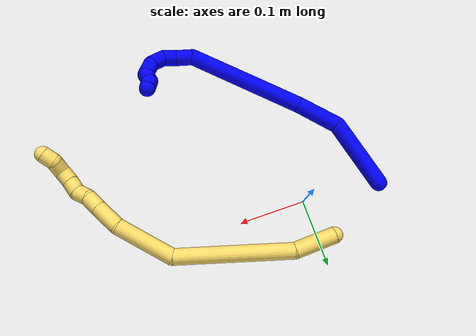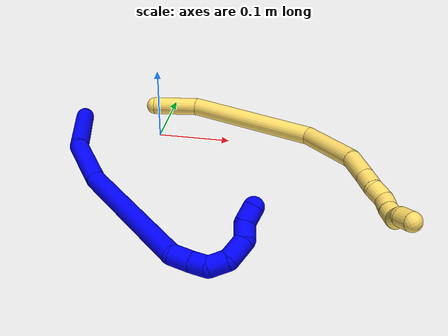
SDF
<sdf version="1.7">
 <world name="default">
  <model name="photoneo_s_sensor">
   <static>1</static>
   <pose>0 0 2 1.57079 1.57079 3.14159</pose>
   <link name="link">
    <inertial><mass>0.1</mass></inertial>
    <sensor name="sensor" type="depth">
     <update_rate>30</update_rate>
     <camera>
      <horizontal_fov>1.22</horizontal_fov>
      <image><width>1920</width><height>1200</height><format>B8G8R8</format></image>
      <clip><near>0.1</near><far>4</far></clip>
      <depth_camera><output>points</output></depth_camera>
     </camera>
     <plugin name="camera_plugin" filename="libgazebo_ros_depth_camera.so">
      <baseline>0.2</baseline>
      <alwaysOn>1</alwaysOn>
      <updateRate>0.0</updateRate>
      <cameraName>camera_ir</cameraName>
      <imageTopicName>/camera/color/image_raw</imageTopicName>
      <cameraInfoTopicName>/camera/color/camera_info</cameraInfoTopicName>
      <depthImageTopicName>/camera/depth/image_raw</depthImageTopicName>
      <depthImageCameraInfoTopicName>/camera/depth/camera_info</depthImageCameraInfoTopicName>
      <pointCloudTopicName>/camera/depth/points</pointCloudTopicName>
      <frameName>fr_optical</frameName>
      <pointCloudCutoff>0.1</pointCloudCutoff>
      <pointCloudCutoffMax>2.0</pointCloudCutoffMax>
      <distortionK1>0</distortionK1>
      <distortionK2>0</distortionK2>
      <distortionK3>0</distortionK3>
      <distortionT1>0</distortionT1>
      <distortionT2>0</distortionT2>
      <CxPrime>0</CxPrime>
      <Cx>0</Cx>
      <Cy>0</Cy>
      <focalLength>0</focalLength>
      <hackBaseline>0</hackBaseline>
     </plugin>
    </sensor>
   </link>
  </model>
  <model name="bin">
   <static>1</static>
   <link name="bottom">
    <collision name="collision-bottom">
     <pose>0 0 -0.01 0 -0 0</pose>
     <geometry><box><size>0.8 0.6 0.02</size></box></geometry>
     <surface>
      <friction><ode><mu>100</mu><mu2>100</mu2></ode></friction>
      <contact><collide_bitmask>65535</collide_bitmask></contact>
     </surface>
    </collision>
   </link>
   <link name="west_wall">
    <collision name="collision-west_wall">
     <pose>-0.41 0 0.1 0 -0 0</pose>
     <geometry><box><size>0.02 0.6 0.2</size></box></geometry>
     <surface>
      <friction><ode><mu>100</mu><mu2>100</mu2></ode></friction>
      <contact><collide_bitmask>65535</collide_bitmask></contact>
     </surface>
    </collision>
   </link>
   <link name="east_wall">
    <collision name="collision-east_wall">
     <pose>0.41 0 0.1 0 -0 0</pose>
     <geometry><box><size>0.02 0.6 0.2</size></box></geometry>
     <surface>
      <friction><ode><mu>100</mu><mu2>100</mu2></ode></friction>
      <contact><collide_bitmask>65535</collide_bitmask></contact>
     </surface>
    </collision>
   </link>
   <link name="south_wall">
    <collision name="collision-south_wall">
     <pose>0 -0.31 0.1 0 -0 0</pose>
     <geometry><box><size>0.8 0.02 0.2</size></box></geometry>
     <surface>
      <friction><ode><mu>100</mu><mu2>100</mu2></ode></friction>
      <contact><collide_bitmask>65535</collide_bitmask></contact>
     </surface>
    </collision>
   </link>
   <link name="north_wall">
    <collision name="collision-north_wall">
     <pose>0 0.31 0.1 0 -0 0</pose>
     <geometry><box><size>0.8 0.02 0.2</size></box></geometry>
     <surface>
      <friction><ode><mu>100</mu><mu2>100</mu2></ode></friction>
      <contact><collide_bitmask>65535</collide_bitmask></contact>
     </surface>
    </collision>
   </link>
  </model>
  <model name="1">
   <static>0</static>
   <link name="1">
    <collision name="collision-cylinder-e_1_1_4">
     <pose>0.000866 -0.011424 0.051943 0.216487 0.016278 0.001769</pose>
     <geometry><cylinder><radius>0.0125</radius><length>0.106382</length></cylinder></geometry>
     <surface>
      <friction><ode><mu>1.16</mu><mu2>1.16</mu2><slip1>0</slip1><slip2>0</slip2></ode></friction>
      <contact><ode><kp>1e+06</kp><kd>1</kd><max_vel>0</max_vel><min_depth>0.001</min_depth></ode></contact>
     </surface>
    </collision>
    <visual name="visual-cylinder-e_1_1_4">
     <pose>0.000866 -0.011424 0.051943 0.216487 0.016278 0.001769</pose>
     <geometry><cylinder><radius>0.0125</radius><length>0.106382</length></cylinder></geometry>
     <material><ambient>0 0 1 1</ambient></material>
    </visual>
    <collision name="collision-cylinder-e_2_4_5">
     <pose>0.008972 -0.043232 0.13002 0.662408 0.215082 0.074213</pose>
     <geometry><cylinder><radius>0.0125</radius><length>0.067851</length></cylinder></geometry>
     <surface>
      <friction><ode><mu>1.16</mu><mu2>1.16</mu2><slip1>0</slip1><slip2>0</slip2></ode></friction>
      <contact><ode><kp>1e+06</kp><kd>1</kd><max_vel>0</max_vel><min_depth>0.001</min_depth></ode></contact>
     </surface>
    </collision>
    <visual name="visual-cylinder-e_2_4_5">
     <pose>0.008972 -0.043232 0.13002 0.662408 0.215082 0.074213</pose>
     <geometry><cylinder><radius>0.0125</radius><length>0.067851</length></cylinder></geometry>
     <material><ambient>0 0 1 1</ambient></material>
    </visual>
    <collision name="collision-cylinder-e_3_5_6">
     <pose>0.055796 -0.107141 0.227901 0.545298 0.440752 0.125111</pose>
     <geometry><cylinder><radius>0.0125</radius><length>0.185568</length></cylinder></geometry>
     <surface>
      <friction><ode><mu>1.16</mu><mu2>1.16</mu2><slip1>0</slip1><slip2>0</slip2></ode></friction>
      <contact><ode><kp>1e+06</kp><kd>1</kd><max_vel>0</max_vel><min_depth>0.001</min_depth></ode></contact>
     </surface>
    </collision>
    <visual name="visual-cylinder-e_3_5_6">
     <pose>0.055796 -0.107141 0.227901 0.545298 0.440752 0.125111</pose>
     <geometry><cylinder><radius>0.0125</radius><length>0.185568</length></cylinder></geometry>
     <material><ambient>0 0 1 1</ambient></material>
    </visual>
    <collision name="collision-cylinder-e_4_6_7">
     <pose>0.104959 -0.157859 0.304806 0.948635 0.824871 0.441929</pose>
     <geometry><cylinder><radius>0.0125</radius><length>0.026084</length></cylinder></geometry>
     <surface>
      <friction><ode><mu>1.16</mu><mu2>1.16</mu2><slip1>0</slip1><slip2>0</slip2></ode></friction>
      <contact><ode><kp>1e+06</kp><kd>1</kd><max_vel>0</max_vel><min_depth>0.001</min_depth></ode></contact>
     </surface>
    </collision>
    <visual name="visual-cylinder-e_4_6_7">
     <pose>0.104959 -0.157859 0.304806 0.948635 0.824871 0.441929</pose>
     <geometry><cylinder><radius>0.0125</radius><length>0.026084</length></cylinder></geometry>
     <material><ambient>0 0 1 1</ambient></material>
    </visual>
    <collision name="collision-cylinder-e_5_7_8">
     <pose>0.122565 -0.169888 0.314643 0.801987 0.873131 0.390594</pose>
     <geometry><cylinder><radius>0.0125</radius><length>0.02095</length></cylinder></geometry>
     <surface>
      <friction><ode><mu>1.16</mu><mu2>1.16</mu2><slip1>0</slip1><slip2>0</slip2></ode></friction>
      <contact><ode><kp>1e+06</kp><kd>1</kd><max_vel>0</max_vel><min_depth>0.001</min_depth></ode></contact>
     </surface>
    </collision>
    <visual name="visual-cylinder-e_5_7_8">
     <pose>0.122565 -0.169888 0.314643 0.801987 0.873131 0.390594</pose>
     <geometry><cylinder><radius>0.0125</radius><length>0.02095</length></cylinder></geometry>
     <material><ambient>0 0 1 1</ambient></material>
    </visual>
    <collision name="collision-cylinder-e_6_8_9">
     <pose>0.142382 -0.175844 0.319013 1.83995 1.47269 1.74412</pose>
     <geometry><cylinder><radius>0.0125</radius><length>0.023692</length></cylinder></geometry>
     <surface>
      <friction><ode><mu>1.16</mu><mu2>1.16</mu2><slip1>0</slip1><slip2>0</slip2></ode></friction>
      <contact><ode><kp>1e+06</kp><kd>1</kd><max_vel>0</max_vel><min_depth>0.001</min_depth></ode></contact>
     </surface>
    </collision>
    <visual name="visual-cylinder-e_6_8_9">
     <pose>0.142382 -0.175844 0.319013 1.83995 1.47269 1.74412</pose>
     <geometry><cylinder><radius>0.0125</radius><length>0.023692</length></cylinder></geometry>
     <material><ambient>0 0 1 1</ambient></material>
    </visual>
    <collision name="collision-cylinder-e_7_9_10">
     <pose>0.165902 -0.17274 0.312024 -2.57799 0.977946 -2.14497</pose>
     <geometry><cylinder><radius>0.0125</radius><length>0.02829</length></cylinder></geometry>
     <surface>
      <friction><ode><mu>1.16</mu><mu2>1.16</mu2><slip1>0</slip1><slip2>0</slip2></ode></friction>
      <contact><ode><kp>1e+06</kp><kd>1</kd><max_vel>0</max_vel><min_depth>0.001</min_depth></ode></contact>
     </surface>
    </collision>
    <visual name="visual-cylinder-e_7_9_10">
     <pose>0.165902 -0.17274 0.312024 -2.57799 0.977946 -2.14497</pose>
     <geometry><cylinder><radius>0.0125</radius><length>0.02829</length></cylinder></geometry>
     <material><ambient>0 0 1 1</ambient></material>
    </visual>
    <collision name="collision-cylinder-e_8_10_11">
     <pose>0.18096 -0.161588 0.29871 -2.33432 0.333851 -0.751546</pose>
     <geometry><cylinder><radius>0.0125</radius><length>0.020306</length></cylinder></geometry>
     <surface>
      <friction><ode><mu>1.16</mu><mu2>1.16</mu2><slip1>0</slip1><slip2>0</slip2></ode></friction>
      <contact><ode><kp>1e+06</kp><kd>1</kd><max_vel>0</max_vel><min_depth>0.001</min_depth></ode></contact>
     </surface>
    </collision>
    <visual name="visual-cylinder-e_8_10_11">
     <pose>0.18096 -0.161588 0.29871 -2.33432 0.333851 -0.751546</pose>
     <geometry><cylinder><radius>0.0125</radius><length>0.020306</length></cylinder></geometry>
     <material><ambient>0 0 1 1</ambient></material>
    </visual>
    <collision name="collision-cylinder-e_9_11_2">
     <pose>0.192224 -0.149579 0.287587 -2.29465 0.863889 -1.59325</pose>
     <geometry><cylinder><radius>0.0125</radius><length>0.020876</length></cylinder></geometry>
     <surface>
      <friction><ode><mu>1.16</mu><mu2>1.16</mu2><slip1>0</slip1><slip2>0</slip2></ode></friction>
      <contact><ode><kp>1e+06</kp><kd>1</kd><max_vel>0</max_vel><min_depth>0.001</min_depth></ode></contact>
     </surface>
    </collision>
    <visual name="visual-cylinder-e_9_11_2">
     <pose>0.192224 -0.149579 0.287587 -2.29465 0.863889 -1.59325</pose>
     <geometry><cylinder><radius>0.0125</radius><length>0.020876</length></cylinder></geometry>
     <material><ambient>0 0 1 1</ambient></material>
    </visual>
    <collision name="collision-sphere-2">
     <pose>0.200161 -0.144499 0.283097 0 -0 0</pose>
     <geometry><sphere><radius>0.0125</radius></sphere></geometry>
     <surface>
      <friction><ode><mu>1.16</mu><mu2>1.16</mu2><slip1>0</slip1><slip2>0</slip2></ode></friction>
      <contact><ode><kp>1e+06</kp><kd>1</kd><max_vel>0</max_vel><min_depth>0.001</min_depth></ode></contact>
     </surface>
    </collision>
    <visual name="visual-sphere-2">
     <pose>0.200161 -0.144499 0.283097 0 -0 0</pose>
     <geometry><sphere><radius>0.0125</radius></sphere></geometry>
     <material><ambient>0 0 1 1</ambient></material>
    </visual>
    <collision name="collision-sphere-11">
     <pose>0.184287 -0.154658 0.292077 0 -0 0</pose>
     <geometry><sphere><radius>0.0125</radius></sphere></geometry>
     <surface>
      <friction><ode><mu>1.16</mu><mu2>1.16</mu2><slip1>0</slip1><slip2>0</slip2></ode></friction>
      <contact><ode><kp>1e+06</kp><kd>1</kd><max_vel>0</max_vel><min_depth>0.001</min_depth></ode></contact>
     </surface>
    </collision>
    <visual name="visual-sphere-11">
     <pose>0.184287 -0.154658 0.292077 0 -0 0</pose>
     <geometry><sphere><radius>0.0125</radius></sphere></geometry>
     <material><ambient>0 0 1 1</ambient></material>
    </visual>
    <collision name="collision-sphere-10">
     <pose>0.177633 -0.168518 0.305343 0 -0 0</pose>
     <geometry><sphere><radius>0.0125</radius></sphere></geometry>
     <surface>
      <friction><ode><mu>1.16</mu><mu2>1.16</mu2><slip1>0</slip1><slip2>0</slip2></ode></friction>
      <contact><ode><kp>1e+06</kp><kd>1</kd><max_vel>0</max_vel><min_depth>0.001</min_depth></ode></contact>
     </surface>
    </collision>
    <visual name="visual-sphere-10">
     <pose>0.177633 -0.168518 0.305343 0 -0 0</pose>
     <geometry><sphere><radius>0.0125</radius></sphere></geometry>
     <material><ambient>0 0 1 1</ambient></material>
    </visual>
    <collision name="collision-sphere-9">
     <pose>0.154171 -0.176962 0.318705 0 -0 0</pose>
     <geometry><sphere><radius>0.0125</radius></sphere></geometry>
     <surface>
      <friction><ode><mu>1.16</mu><mu2>1.16</mu2><slip1>0</slip1><slip2>0</slip2></ode></friction>
      <contact><ode><kp>1e+06</kp><kd>1</kd><max_vel>0</max_vel><min_depth>0.001</min_depth></ode></contact>
     </surface>
    </collision>
    <visual name="visual-sphere-9">
     <pose>0.154171 -0.176962 0.318705 0 -0 0</pose>
     <geometry><sphere><radius>0.0125</radius></sphere></geometry>
     <material><ambient>0 0 1 1</ambient></material>
    </visual>
    <collision name="collision-sphere-4">
     <pose>0.001732 -0.022848 0.103885 0 -0 0</pose>
     <geometry><sphere><radius>0.0125</radius></sphere></geometry>
     <surface>
      <friction><ode><mu>1.16</mu><mu2>1.16</mu2><slip1>0</slip1><slip2>0</slip2></ode></friction>
      <contact><ode><kp>1e+06</kp><kd>1</kd><max_vel>0</max_vel><min_depth>0.001</min_depth></ode></contact>
     </surface>
    </collision>
    <visual name="visual-sphere-4">
     <pose>0.001732 -0.022848 0.103885 0 -0 0</pose>
     <geometry><sphere><radius>0.0125</radius></sphere></geometry>
     <material><ambient>0 0 1 1</ambient></material>
    </visual>
    <collision name="collision-sphere-1">
     <geometry><sphere><radius>0.0125</radius></sphere></geometry>
     <surface>
      <friction><ode><mu>1.16</mu><mu2>1.16</mu2><slip1>0</slip1><slip2>0</slip2></ode></friction>
      <contact><ode><kp>1e+06</kp><kd>1</kd><max_vel>0</max_vel><min_depth>0.001</min_depth></ode></contact>
     </surface>
    </collision>
    <visual name="visual-sphere-1">
     <geometry><sphere><radius>0.0125</radius></sphere></geometry>
     <material><ambient>0 0 1 1</ambient></material>
    </visual>
    <collision name="collision-sphere-8">
     <pose>0.130593 -0.174725 0.319322 0 -0 0</pose>
     <geometry><sphere><radius>0.0125</radius></sphere></geometry>
     <surface>
      <friction><ode><mu>1.16</mu><mu2>1.16</mu2><slip1>0</slip1><slip2>0</slip2></ode></friction>
      <contact><ode><kp>1e+06</kp><kd>1</kd><max_vel>0</max_vel><min_depth>0.001</min_depth></ode></contact>
     </surface>
    </collision>
    <visual name="visual-sphere-8">
     <pose>0.130593 -0.174725 0.319322 0 -0 0</pose>
     <geometry><sphere><radius>0.0125</radius></sphere></geometry>
     <material><ambient>0 0 1 1</ambient></material>
    </visual>
    <collision name="collision-sphere-5">
     <pose>0.016213 -0.063616 0.156154 0 -0 0</pose>
     <geometry><sphere><radius>0.0125</radius></sphere></geometry>
     <surface>
      <friction><ode><mu>1.16</mu><mu2>1.16</mu2><slip1>0</slip1><slip2>0</slip2></ode></friction>
      <contact><ode><kp>1e+06</kp><kd>1</kd><max_vel>0</max_vel><min_depth>0.001</min_depth></ode></contact>
     </surface>
    </collision>
    <visual name="visual-sphere-5">
     <pose>0.016213 -0.063616 0.156154 0 -0 0</pose>
     <geometry><sphere><radius>0.0125</radius></sphere></geometry>
     <material><ambient>0 0 1 1</ambient></material>
    </visual>
    <collision name="collision-sphere-6">
     <pose>0.09538 -0.150667 0.299647 0 -0 0</pose>
     <geometry><sphere><radius>0.0125</radius></sphere></geometry>
     <surface>
      <friction><ode><mu>1.16</mu><mu2>1.16</mu2><slip1>0</slip1><slip2>0</slip2></ode></friction>
      <contact><ode><kp>1e+06</kp><kd>1</kd><max_vel>0</max_vel><min_depth>0.001</min_depth></ode></contact>
     </surface>
    </collision>
    <visual name="visual-sphere-6">
     <pose>0.09538 -0.150667 0.299647 0 -0 0</pose>
     <geometry><sphere><radius>0.0125</radius></sphere></geometry>
     <material><ambient>0 0 1 1</ambient></material>
    </visual>
    <collision name="collision-sphere-7">
     <pose>0.114538 -0.165052 0.309964 0 -0 0</pose>
     <geometry><sphere><radius>0.0125</radius></sphere></geometry>
     <surface>
      <friction><ode><mu>1.16</mu><mu2>1.16</mu2><slip1>0</slip1><slip2>0</slip2></ode></friction>
      <contact><ode><kp>1e+06</kp><kd>1</kd><max_vel>0</max_vel><min_depth>0.001</min_depth></ode></contact>
     </surface>
    </collision>
    <visual name="visual-sphere-7">
     <pose>0.114538 -0.165052 0.309964 0 -0 0</pose>
     <geometry><sphere><radius>0.0125</radius></sphere></geometry>
     <material><ambient>0 0 1 1</ambient></material>
    </visual>
    <inertial>
     <pose>0.064229 -0.094328 0.199272 0 -0 0</pose>
     <mass>0.5</mass>
     <inertia>
      <ixx>0.000696</ixx>
      <ixy>0</ixy>
      <ixz>0</ixz>
      <iyy>0.000656</iyy>
      <iyz>0</iyz>
      <izz>6.7e-05</izz>
     </inertia>
    </inertial>
   </link>
   <pose>-0.116416 0.011802 0.011763 1.22975 -0.429821 0.303372</pose>
  </model>
  <model name="5">
   <static>0</static>
   <link name="5">
    <collision name="collision-cylinder-e_1_1_4">
     <pose>0.002177 -0.027709 0.015684 1.05574 0.068258 0.039809</pose>
     <geometry><cylinder><radius>0.0125</radius><length>0.063828</length></cylinder></geometry>
     <surface>
      <friction><ode><mu>1.16</mu><mu2>1.16</mu2><slip1>0</slip1><slip2>0</slip2></ode></friction>
      <contact><ode><kp>1e+06</kp><kd>1</kd><max_vel>0</max_vel><min_depth>0.001</min_depth></ode></contact>
     </surface>
    </collision>
    <visual name="visual-cylinder-e_1_1_4">
     <pose>0.002177 -0.027709 0.015684 1.05574 0.068258 0.039809</pose>
     <geometry><cylinder><radius>0.0125</radius><length>0.063828</length></cylinder></geometry>
     <material><ambient>1 0.858824 0.4 1</ambient></material>
    </visual>
    <collision name="collision-cylinder-e_2_4_5">
     <pose>0.031274 -0.117839 0.08937 0.822073 0.306014 0.134229</pose>
     <geometry><cylinder><radius>0.0125</radius><length>0.178723</length></cylinder></geometry>
     <surface>
      <friction><ode><mu>1.16</mu><mu2>1.16</mu2><slip1>0</slip1><slip2>0</slip2></ode></friction>
      <contact><ode><kp>1e+06</kp><kd>1</kd><max_vel>0</max_vel><min_depth>0.001</min_depth></ode></contact>
     </surface>
    </collision>
    <visual name="visual-cylinder-e_2_4_5">
     <pose>0.031274 -0.117839 0.08937 0.822073 0.306014 0.134229</pose>
     <geometry><cylinder><radius>0.0125</radius><length>0.178723</length></cylinder></geometry>
     <material><ambient>1 0.858824 0.4 1</ambient></material>
    </visual>
    <collision name="collision-cylinder-e_3_5_6">
     <pose>0.091857 -0.196968 0.173802 0.563736 0.822257 0.251168</pose>
     <geometry><cylinder><radius>0.0125</radius><length>0.091887</length></cylinder></geometry>
     <surface>
      <friction><ode><mu>1.16</mu><mu2>1.16</mu2><slip1>0</slip1><slip2>0</slip2></ode></friction>
      <contact><ode><kp>1e+06</kp><kd>1</kd><max_vel>0</max_vel><min_depth>0.001</min_depth></ode></contact>
     </surface>
    </collision>
    <visual name="visual-cylinder-e_3_5_6">
     <pose>0.091857 -0.196968 0.173802 0.563736 0.822257 0.251168</pose>
     <geometry><cylinder><radius>0.0125</radius><length>0.091887</length></cylinder></geometry>
     <material><ambient>1 0.858824 0.4 1</ambient></material>
    </visual>
    <collision name="collision-cylinder-e_4_6_7">
     <pose>0.140521 -0.214976 0.213561 0.097252 0.842019 0.043575</pose>
     <geometry><cylinder><radius>0.0125</radius><length>0.04022</length></cylinder></geometry>
     <surface>
      <friction><ode><mu>1.16</mu><mu2>1.16</mu2><slip1>0</slip1><slip2>0</slip2></ode></friction>
      <contact><ode><kp>1e+06</kp><kd>1</kd><max_vel>0</max_vel><min_depth>0.001</min_depth></ode></contact>
     </surface>
    </collision>
    <visual name="visual-cylinder-e_4_6_7">
     <pose>0.140521 -0.214976 0.213561 0.097252 0.842019 0.043575</pose>
     <geometry><cylinder><radius>0.0125</radius><length>0.04022</length></cylinder></geometry>
     <material><ambient>1 0.858824 0.4 1</ambient></material>
    </visual>
    <collision name="collision-cylinder-e_5_7_8">
     <pose>0.164365 -0.216692 0.234536 0.05429 0.857055 0.024807</pose>
     <geometry><cylinder><radius>0.0125</radius><length>0.023393</length></cylinder></geometry>
     <surface>
      <friction><ode><mu>1.16</mu><mu2>1.16</mu2><slip1>0</slip1><slip2>0</slip2></ode></friction>
      <contact><ode><kp>1e+06</kp><kd>1</kd><max_vel>0</max_vel><min_depth>0.001</min_depth></ode></contact>
     </surface>
    </collision>
    <visual name="visual-cylinder-e_5_7_8">
     <pose>0.164365 -0.216692 0.234536 0.05429 0.857055 0.024807</pose>
     <geometry><cylinder><radius>0.0125</radius><length>0.023393</length></cylinder></geometry>
     <material><ambient>1 0.858824 0.4 1</ambient></material>
    </visual>
    <collision name="collision-cylinder-e_6_8_9">
     <pose>0.178252 -0.219282 0.251154 0.237773 0.500208 0.061009</pose>
     <geometry><cylinder><radius>0.0125</radius><length>0.02104</length></cylinder></geometry>
     <surface>
      <friction><ode><mu>1.16</mu><mu2>1.16</mu2><slip1>0</slip1><slip2>0</slip2></ode></friction>
      <contact><ode><kp>1e+06</kp><kd>1</kd><max_vel>0</max_vel><min_depth>0.001</min_depth></ode></contact>
     </surface>
    </collision>
    <visual name="visual-cylinder-e_6_8_9">
     <pose>0.178252 -0.219282 0.251154 0.237773 0.500208 0.061009</pose>
     <geometry><cylinder><radius>0.0125</radius><length>0.02104</length></cylinder></geometry>
     <material><ambient>1 0.858824 0.4 1</ambient></material>
    </visual>
    <collision name="collision-cylinder-e_7_9_10">
     <pose>0.19158 -0.220256 0.265872 -0.205822 0.954193 -0.106671</pose>
     <geometry><cylinder><radius>0.0125</radius><length>0.020306</length></cylinder></geometry>
     <surface>
      <friction><ode><mu>1.16</mu><mu2>1.16</mu2><slip1>0</slip1><slip2>0</slip2></ode></friction>
      <contact><ode><kp>1e+06</kp><kd>1</kd><max_vel>0</max_vel><min_depth>0.001</min_depth></ode></contact>
     </surface>
    </collision>
    <visual name="visual-cylinder-e_7_9_10">
     <pose>0.19158 -0.220256 0.265872 -0.205822 0.954193 -0.106671</pose>
     <geometry><cylinder><radius>0.0125</radius><length>0.020306</length></cylinder></geometry>
     <material><ambient>1 0.858824 0.4 1</ambient></material>
    </visual>
    <collision name="collision-cylinder-e_8_10_11">
     <pose>0.208314 -0.219189 0.277207 0.023802 0.986403 0.012794</pose>
     <geometry><cylinder><radius>0.0125</radius><length>0.020263</length></cylinder></geometry>
     <surface>
      <friction><ode><mu>1.16</mu><mu2>1.16</mu2><slip1>0</slip1><slip2>0</slip2></ode></friction>
      <contact><ode><kp>1e+06</kp><kd>1</kd><max_vel>0</max_vel><min_depth>0.001</min_depth></ode></contact>
     </surface>
    </collision>
    <visual name="visual-cylinder-e_8_10_11">
     <pose>0.208314 -0.219189 0.277207 0.023802 0.986403 0.012794</pose>
     <geometry><cylinder><radius>0.0125</radius><length>0.020263</length></cylinder></geometry>
     <material><ambient>1 0.858824 0.4 1</ambient></material>
    </visual>
    <collision name="collision-cylinder-e_9_11_12">
     <pose>0.226469 -0.22195 0.281583 2.00289 1.28098 1.72245</pose>
     <geometry><cylinder><radius>0.0125</radius><length>0.020255</length></cylinder></geometry>
     <surface>
      <friction><ode><mu>1.16</mu><mu2>1.16</mu2><slip1>0</slip1><slip2>0</slip2></ode></friction>
      <contact><ode><kp>1e+06</kp><kd>1</kd><max_vel>0</max_vel><min_depth>0.001</min_depth></ode></contact>
     </surface>
    </collision>
    <visual name="visual-cylinder-e_9_11_12">
     <pose>0.226469 -0.22195 0.281583 2.00289 1.28098 1.72245</pose>
     <geometry><cylinder><radius>0.0125</radius><length>0.020255</length></cylinder></geometry>
     <material><ambient>1 0.858824 0.4 1</ambient></material>
    </visual>
    <collision name="collision-cylinder-e_10_12_2">
     <pose>0.24446 -0.228292 0.284663 0.713176 0.970223 0.387787</pose>
     <geometry><cylinder><radius>0.0125</radius><length>0.020085</length></cylinder></geometry>
     <surface>
      <friction><ode><mu>1.16</mu><mu2>1.16</mu2><slip1>0</slip1><slip2>0</slip2></ode></friction>
      <contact><ode><kp>1e+06</kp><kd>1</kd><max_vel>0</max_vel><min_depth>0.001</min_depth></ode></contact>
     </surface>
    </collision>
    <visual name="visual-cylinder-e_10_12_2">
     <pose>0.24446 -0.228292 0.284663 0.713176 0.970223 0.387787</pose>
     <geometry><cylinder><radius>0.0125</radius><length>0.020085</length></cylinder></geometry>
     <material><ambient>1 0.858824 0.4 1</ambient></material>
    </visual>
    <collision name="collision-sphere-2">
     <pose>0.252745 -0.232005 0.288955 0 -0 0</pose>
     <geometry><sphere><radius>0.0125</radius></sphere></geometry>
     <surface>
      <friction><ode><mu>1.16</mu><mu2>1.16</mu2><slip1>0</slip1><slip2>0</slip2></ode></friction>
      <contact><ode><kp>1e+06</kp><kd>1</kd><max_vel>0</max_vel><min_depth>0.001</min_depth></ode></contact>
     </surface>
    </collision>
    <visual name="visual-sphere-2">
     <pose>0.252745 -0.232005 0.288955 0 -0 0</pose>
     <geometry><sphere><radius>0.0125</radius></sphere></geometry>
     <material><ambient>1 0.858824 0.4 1</ambient></material>
    </visual>
    <collision name="collision-sphere-12">
     <pose>0.236175 -0.224579 0.280371 0 -0 0</pose>
     <geometry><sphere><radius>0.0125</radius></sphere></geometry>
     <surface>
      <friction><ode><mu>1.16</mu><mu2>1.16</mu2><slip1>0</slip1><slip2>0</slip2></ode></friction>
      <contact><ode><kp>1e+06</kp><kd>1</kd><max_vel>0</max_vel><min_depth>0.001</min_depth></ode></contact>
     </surface>
    </collision>
    <visual name="visual-sphere-12">
     <pose>0.236175 -0.224579 0.280371 0 -0 0</pose>
     <geometry><sphere><radius>0.0125</radius></sphere></geometry>
     <material><ambient>1 0.858824 0.4 1</ambient></material>
    </visual>
    <collision name="collision-sphere-11">
     <pose>0.216764 -0.219322 0.282795 0 -0 0</pose>
     <geometry><sphere><radius>0.0125</radius></sphere></geometry>
     <surface>
      <friction><ode><mu>1.16</mu><mu2>1.16</mu2><slip1>0</slip1><slip2>0</slip2></ode></friction>
      <contact><ode><kp>1e+06</kp><kd>1</kd><max_vel>0</max_vel><min_depth>0.001</min_depth></ode></contact>
     </surface>
    </collision>
    <visual name="visual-sphere-11">
     <pose>0.216764 -0.219322 0.282795 0 -0 0</pose>
     <geometry><sphere><radius>0.0125</radius></sphere></geometry>
     <material><ambient>1 0.858824 0.4 1</ambient></material>
    </visual>
    <collision name="collision-sphere-10">
     <pose>0.199864 -0.219056 0.271619 0 -0 0</pose>
     <geometry><sphere><radius>0.0125</radius></sphere></geometry>
     <surface>
      <friction><ode><mu>1.16</mu><mu2>1.16</mu2><slip1>0</slip1><slip2>0</slip2></ode></friction>
      <contact><ode><kp>1e+06</kp><kd>1</kd><max_vel>0</max_vel><min_depth>0.001</min_depth></ode></contact>
     </surface>
    </collision>
    <visual name="visual-sphere-10">
     <pose>0.199864 -0.219056 0.271619 0 -0 0</pose>
     <geometry><sphere><radius>0.0125</radius></sphere></geometry>
     <material><ambient>1 0.858824 0.4 1</ambient></material>
    </visual>
    <collision name="collision-sphere-9">
     <pose>0.183297 -0.221456 0.260125 0 -0 0</pose>
     <geometry><sphere><radius>0.0125</radius></sphere></geometry>
     <surface>
      <friction><ode><mu>1.16</mu><mu2>1.16</mu2><slip1>0</slip1><slip2>0</slip2></ode></friction>
      <contact><ode><kp>1e+06</kp><kd>1</kd><max_vel>0</max_vel><min_depth>0.001</min_depth></ode></contact>
     </surface>
    </collision>
    <visual name="visual-sphere-9">
     <pose>0.183297 -0.221456 0.260125 0 -0 0</pose>
     <geometry><sphere><radius>0.0125</radius></sphere></geometry>
     <material><ambient>1 0.858824 0.4 1</ambient></material>
    </visual>
    <collision name="collision-sphere-4">
     <pose>0.004353 -0.055417 0.031368 0 -0 0</pose>
     <geometry><sphere><radius>0.0125</radius></sphere></geometry>
     <surface>
      <friction><ode><mu>1.16</mu><mu2>1.16</mu2><slip1>0</slip1><slip2>0</slip2></ode></friction>
      <contact><ode><kp>1e+06</kp><kd>1</kd><max_vel>0</max_vel><min_depth>0.001</min_depth></ode></contact>
     </surface>
    </collision>
    <visual name="visual-sphere-4">
     <pose>0.004353 -0.055417 0.031368 0 -0 0</pose>
     <geometry><sphere><radius>0.0125</radius></sphere></geometry>
     <material><ambient>1 0.858824 0.4 1</ambient></material>
    </visual>
    <collision name="collision-sphere-1">
     <geometry><sphere><radius>0.0125</radius></sphere></geometry>
     <surface>
      <friction><ode><mu>1.16</mu><mu2>1.16</mu2><slip1>0</slip1><slip2>0</slip2></ode></friction>
      <contact><ode><kp>1e+06</kp><kd>1</kd><max_vel>0</max_vel><min_depth>0.001</min_depth></ode></contact>
     </surface>
    </collision>
    <visual name="visual-sphere-1">
     <geometry><sphere><radius>0.0125</radius></sphere></geometry>
     <material><ambient>1 0.858824 0.4 1</ambient></material>
    </visual>
    <collision name="collision-sphere-8">
     <pose>0.173206 -0.217107 0.242182 0 -0 0</pose>
     <geometry><sphere><radius>0.0125</radius></sphere></geometry>
     <surface>
      <friction><ode><mu>1.16</mu><mu2>1.16</mu2><slip1>0</slip1><slip2>0</slip2></ode></friction>
      <contact><ode><kp>1e+06</kp><kd>1</kd><max_vel>0</max_vel><min_depth>0.001</min_depth></ode></contact>
     </surface>
    </collision>
    <visual name="visual-sphere-8">
     <pose>0.173206 -0.217107 0.242182 0 -0 0</pose>
     <geometry><sphere><radius>0.0125</radius></sphere></geometry>
     <material><ambient>1 0.858824 0.4 1</ambient></material>
    </visual>
    <collision name="collision-sphere-5">
     <pose>0.058195 -0.18026 0.147373 0 -0 0</pose>
     <geometry><sphere><radius>0.0125</radius></sphere></geometry>
     <surface>
      <friction><ode><mu>1.16</mu><mu2>1.16</mu2><slip1>0</slip1><slip2>0</slip2></ode></friction>
      <contact><ode><kp>1e+06</kp><kd>1</kd><max_vel>0</max_vel><min_depth>0.001</min_depth></ode></contact>
     </surface>
    </collision>
    <visual name="visual-sphere-5">
     <pose>0.058195 -0.18026 0.147373 0 -0 0</pose>
     <geometry><sphere><radius>0.0125</radius></sphere></geometry>
     <material><ambient>1 0.858824 0.4 1</ambient></material>
    </visual>
    <collision name="collision-sphere-6">
     <pose>0.125519 -0.213676 0.200232 0 -0 0</pose>
     <geometry><sphere><radius>0.0125</radius></sphere></geometry>
     <surface>
      <friction><ode><mu>1.16</mu><mu2>1.16</mu2><slip1>0</slip1><slip2>0</slip2></ode></friction>
      <contact><ode><kp>1e+06</kp><kd>1</kd><max_vel>0</max_vel><min_depth>0.001</min_depth></ode></contact>
     </surface>
    </collision>
    <visual name="visual-sphere-6">
     <pose>0.125519 -0.213676 0.200232 0 -0 0</pose>
     <geometry><sphere><radius>0.0125</radius></sphere></geometry>
     <material><ambient>1 0.858824 0.4 1</ambient></material>
    </visual>
    <collision name="collision-sphere-7">
     <pose>0.155523 -0.216276 0.22689 0 -0 0</pose>
     <geometry><sphere><radius>0.0125</radius></sphere></geometry>
     <surface>
      <friction><ode><mu>1.16</mu><mu2>1.16</mu2><slip1>0</slip1><slip2>0</slip2></ode></friction>
      <contact><ode><kp>1e+06</kp><kd>1</kd><max_vel>0</max_vel><min_depth>0.001</min_depth></ode></contact>
     </surface>
    </collision>
    <visual name="visual-sphere-7">
     <pose>0.155523 -0.216276 0.22689 0 -0 0</pose>
     <geometry><sphere><radius>0.0125</radius></sphere></geometry>
     <material><ambient>1 0.858824 0.4 1</ambient></material>
    </visual>
    <inertial>
     <pose>0.090049 -0.154504 0.149482 0 -0 0</pose>
     <mass>0.5</mass>
     <inertia>
      <ixx>0.00063</ixx>
      <ixy>0</ixy>
      <ixz>0</ixz>
      <iyy>0.000487</iyy>
      <iyz>0</iyz>
      <izz>0.000198</izz>
     </inertia>
    </inertial>
   </link>
   <pose>-0.023294 0.06258 0.012059 -2.60945 -0.549793 -1.48561</pose>
  </model>
 </world>
</sdf>
